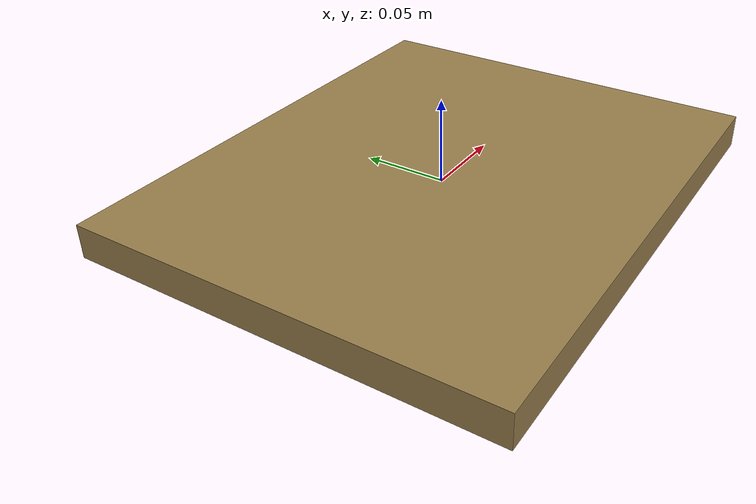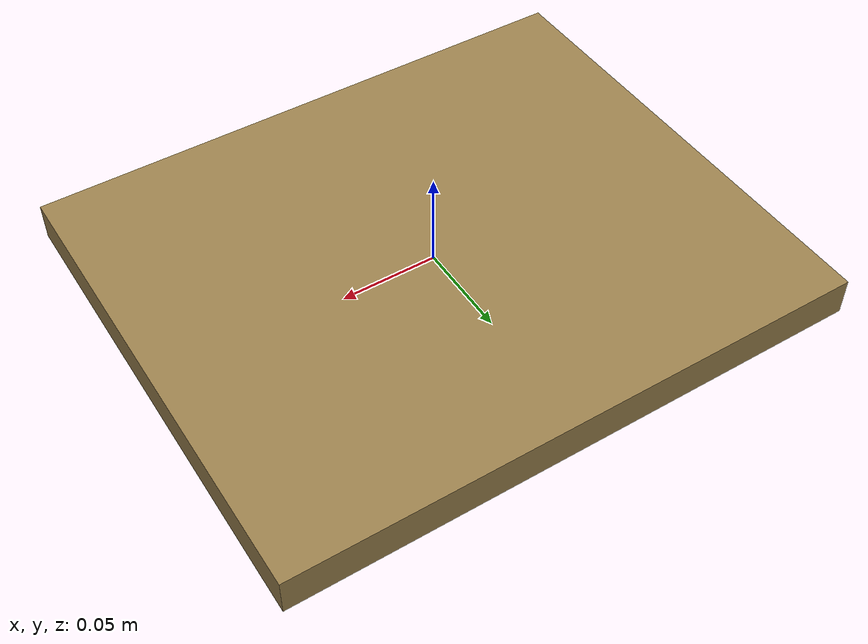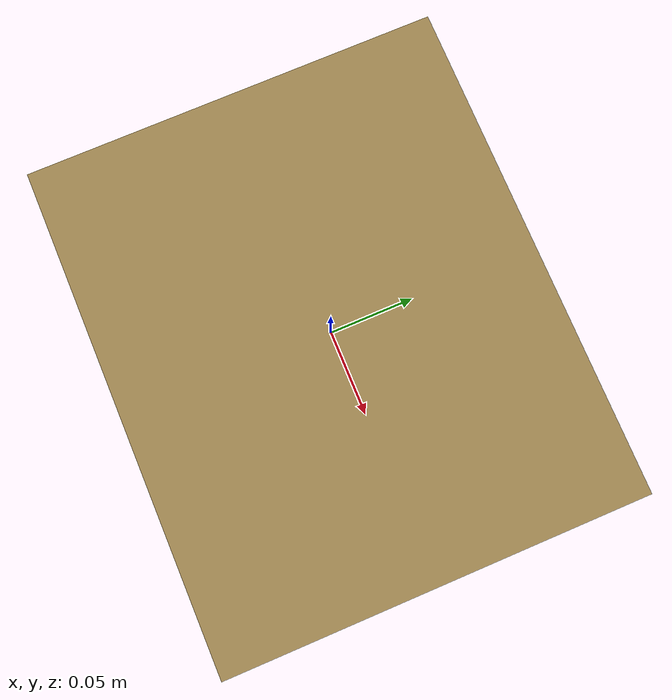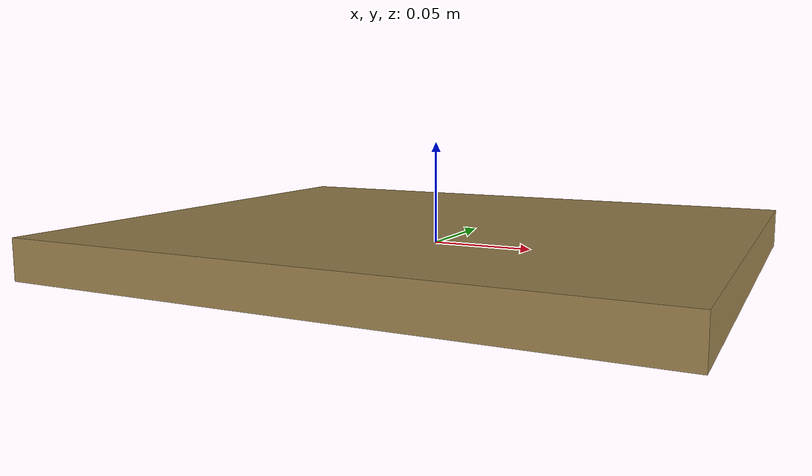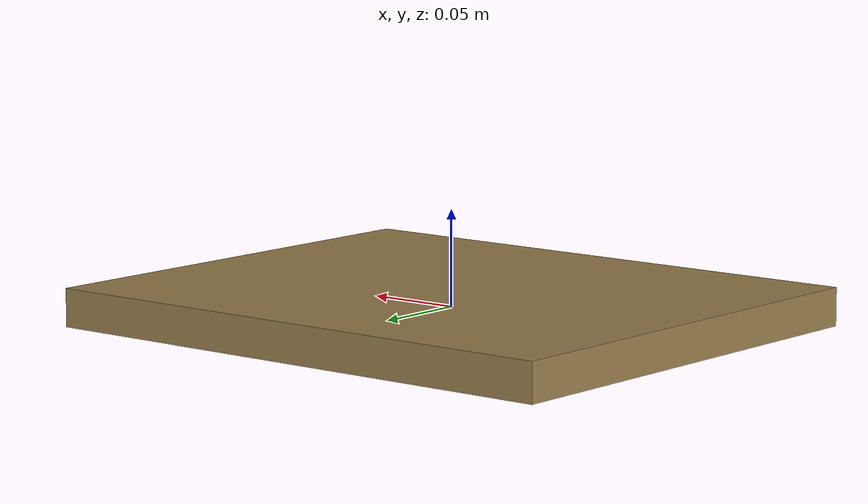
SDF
<?xml version="1.0" ?>
<sdf version="1.6">
  <model name="pick_platform">
    <static>true</static>
    <link name="platform_top">
      <collision name="col">
        <geometry><box><size>0.30 0.25 0.02</size></box></geometry>
      </collision>
      <visual name="vis">
        <geometry><box><size>0.30 0.25 0.02</size></box></geometry>
        <material><ambient>0.6 0.5 0.3 1</ambient><diffuse>0.6 0.5 0.3 1</diffuse></material>
      </visual>
    </link>
  </model>
</sdf>
